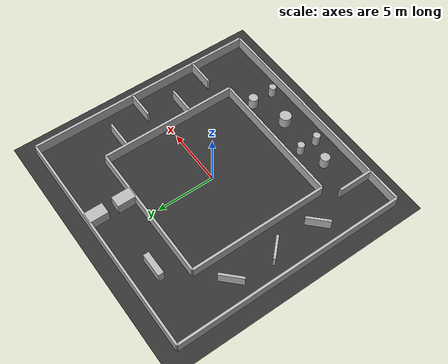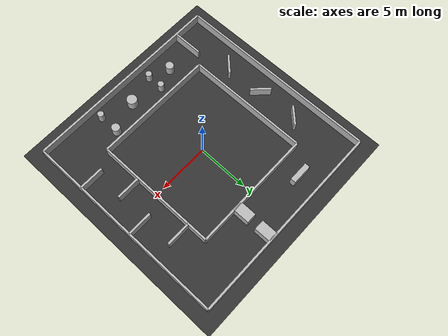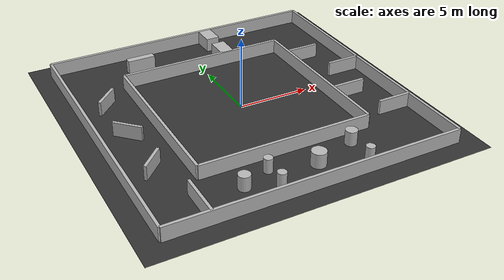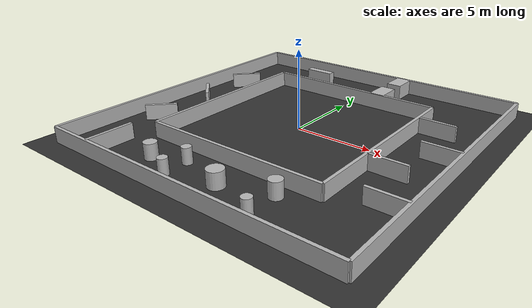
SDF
<sdf version="1.9">
  <world name="ftg_extreme_gauntlet">

    <physics name="1ms" type="ignored">
      <max_step_size>0.001</max_step_size>
      <real_time_factor>1.0</real_time_factor>
    </physics>

    <plugin filename="gz-sim-physics-system" name="gz::sim::systems::Physics"/>
    <plugin filename="gz-sim-sensors-system" name="gz::sim::systems::Sensors">
      <render_engine>ogre2</render_engine>
    </plugin>
    <plugin filename="gz-sim-scene-broadcaster-system" name="gz::sim::systems::SceneBroadcaster"/>
    <plugin filename="gz-sim-user-commands-system" name="gz::sim::systems::UserCommands"/>

    <light type="directional" name="sun">
      <cast_shadows>true</cast_shadows>
      <pose>0 0 10 0 0 0</pose>
      <diffuse>0.8 0.8 0.8 1</diffuse>
      <specular>0.2 0.2 0.2 1</specular>
      <direction>-0.5 0.1 -0.9</direction>
    </light>

    <model name="ground_plane">
      <static>true</static>
      <link name="link">
        <collision name="collision">
          <geometry><plane><normal>0 0 1</normal><size>100 100</size></plane></geometry>
        </collision>
        <visual name="visual">
          <geometry><plane><normal>0 0 1</normal><size>100 100</size></plane></geometry>
          <material><ambient>0.2 0.2 0.2 1</ambient><diffuse>0.2 0.2 0.2 1</diffuse></material>
        </visual>
      </link>
    </model>

    <!-- OUTER PERIMETER (20x20m bounding box)      -->
    <model name="outer_north"><pose>0 10 0.5 0 0 0</pose><static>true</static><link name="link"><collision name="collision"><geometry><box><size>20 0.2 1</size></box></geometry></collision><visual name="visual"><geometry><box><size>20 0.2 1</size></box></geometry></visual></link></model>
    <model name="outer_south"><pose>0 -10 0.5 0 0 0</pose><static>true</static><link name="link"><collision name="collision"><geometry><box><size>20 0.2 1</size></box></geometry></collision><visual name="visual"><geometry><box><size>20 0.2 1</size></box></geometry></visual></link></model>
    <model name="outer_east"><pose>10 0 0.5 0 0 0</pose><static>true</static><link name="link"><collision name="collision"><geometry><box><size>0.2 20 1</size></box></geometry></collision><visual name="visual"><geometry><box><size>0.2 20 1</size></box></geometry></visual></link></model>
    <model name="outer_west"><pose>-10 0 0.5 0 0 0</pose><static>true</static><link name="link"><collision name="collision"><geometry><box><size>0.2 20 1</size></box></geometry></collision><visual name="visual"><geometry><box><size>0.2 20 1</size></box></geometry></visual></link></model>

    <!-- INNER CORE (12x12m) Forming a 4m track     -->
    <model name="inner_north"><pose>0 6 0.5 0 0 0</pose><static>true</static><link name="link"><collision name="collision"><geometry><box><size>12 0.2 1</size></box></geometry></collision><visual name="visual"><geometry><box><size>12 0.2 1</size></box></geometry></visual></link></model>
    <model name="inner_south"><pose>0 -6 0.5 0 0 0</pose><static>true</static><link name="link"><collision name="collision"><geometry><box><size>12 0.2 1</size></box></geometry></collision><visual name="visual"><geometry><box><size>12 0.2 1</size></box></geometry></visual></link></model>
    <model name="inner_east"><pose>6 0 0.5 0 0 0</pose><static>true</static><link name="link"><collision name="collision"><geometry><box><size>0.2 12 1</size></box></geometry></collision><visual name="visual"><geometry><box><size>0.2 12 1</size></box></geometry></visual></link></model>
    <model name="inner_west"><pose>-6 0 0.5 0 0 0</pose><static>true</static><link name="link"><collision name="collision"><geometry><box><size>0.2 12 1</size></box></geometry></collision><visual name="visual"><geometry><box><size>0.2 12 1</size></box></geometry></visual></link></model>

    <!-- STAGE 1: Angled Slalom (Going North)       -->
    <!-- 45-degree angled walls forcing diagonal scanning -->
    <model name="angled_1"><pose>-8 -4 0.5 0 0 0.785398</pose><static>true</static><link name="link"><collision name="collision"><geometry><box><size>2.0 0.2 1</size></box></geometry></collision><visual name="visual"><geometry><box><size>2.0 0.2 1</size></box></geometry></visual></link></model>
    <model name="angled_2"><pose>-8 0 0.5 0 0 -0.785398</pose><static>true</static><link name="link"><collision name="collision"><geometry><box><size>2.0 0.2 1</size></box></geometry></collision><visual name="visual"><geometry><box><size>2.0 0.2 1</size></box></geometry></visual></link></model>
    <model name="angled_3"><pose>-8 4 0.5 0 0 0.785398</pose><static>true</static><link name="link"><collision name="collision"><geometry><box><size>2.0 0.2 1</size></box></geometry></collision><visual name="visual"><geometry><box><size>2.0 0.2 1</size></box></geometry></visual></link></model>

    <!-- STAGE 2: Bifurcation & Bottleneck (East)   -->
    <!-- Splitter Island: Forces the robot to choose a lane -->
    <model name="split_island"><pose>-4 8 0.5 0 0 0</pose><static>true</static><link name="link"><collision name="collision"><geometry><box><size>2 0.5 1</size></box></geometry></collision><visual name="visual"><geometry><box><size>2 0.5 1</size></box></geometry></visual></link></model>

    <!-- Extreme Bottleneck: Narrows 4m track to a 0.8m gap -->
    <model name="bottle_top"><pose>2 9.2 0.5 0 0 0</pose><static>true</static><link name="link"><collision name="collision"><geometry><box><size>1.0 1.6 1</size></box></geometry></collision><visual name="visual"><geometry><box><size>1.0 1.6 1</size></box></geometry></visual></link></model>
    <model name="bottle_bot"><pose>2 6.8 0.5 0 0 0</pose><static>true</static><link name="link"><collision name="collision"><geometry><box><size>1.0 1.6 1</size></box></geometry></collision><visual name="visual"><geometry><box><size>1.0 1.6 1</size></box></geometry></visual></link></model>

    <!-- STAGE 3: Overlapping Hairpins (Going South)-->
    <!-- These walls extend past the center line, eliminating line-of-sight -->
    <model name="hairpin_1"><pose>7.2 4 0.5 0 0 0</pose><static>true</static><link name="link"><collision name="collision"><geometry><box><size>2.4 0.2 1</size></box></geometry></collision><visual name="visual"><geometry><box><size>2.4 0.2 1</size></box></geometry></visual></link></model>
    <model name="hairpin_2"><pose>8.8 1 0.5 0 0 0</pose><static>true</static><link name="link"><collision name="collision"><geometry><box><size>2.4 0.2 1</size></box></geometry></collision><visual name="visual"><geometry><box><size>2.4 0.2 1</size></box></geometry></visual></link></model>
    <model name="hairpin_3"><pose>7.2 -2 0.5 0 0 0</pose><static>true</static><link name="link"><collision name="collision"><geometry><box><size>2.4 0.2 1</size></box></geometry></collision><visual name="visual"><geometry><box><size>2.4 0.2 1</size></box></geometry></visual></link></model>
    <model name="hairpin_4"><pose>8.8 -5 0.5 0 0 0</pose><static>true</static><link name="link"><collision name="collision"><geometry><box><size>2.4 0.2 1</size></box></geometry></collision><visual name="visual"><geometry><box><size>2.4 0.2 1</size></box></geometry></visual></link></model>

    <!-- STAGE 4: Chaos Field & The Trap (Going West)-->
    <!-- Clustered debris with irregular sizing -->
    <model name="chaos_1"><pose>4 -7 0.5 0 0 0</pose><static>true</static><link name="link"><collision name="collision"><geometry><cylinder><radius>0.4</radius><length>1</length></cylinder></geometry></collision><visual name="visual"><geometry><cylinder><radius>0.4</radius><length>1</length></cylinder></geometry></visual></link></model>
    <model name="chaos_2"><pose>4 -9 0.5 0 0 0</pose><static>true</static><link name="link"><collision name="collision"><geometry><cylinder><radius>0.3</radius><length>1</length></cylinder></geometry></collision><visual name="visual"><geometry><cylinder><radius>0.3</radius><length>1</length></cylinder></geometry></visual></link></model>
    <model name="chaos_3"><pose>1 -8 0.5 0 0 0</pose><static>true</static><link name="link"><collision name="collision"><geometry><cylinder><radius>0.5</radius><length>1</length></cylinder></geometry></collision><visual name="visual"><geometry><cylinder><radius>0.5</radius><length>1</length></cylinder></geometry></visual></link></model>
    <model name="chaos_4"><pose>-2 -7.2 0.5 0 0 0</pose><static>true</static><link name="link"><collision name="collision"><geometry><cylinder><radius>0.3</radius><length>1</length></cylinder></geometry></collision><visual name="visual"><geometry><cylinder><radius>0.3</radius><length>1</length></cylinder></geometry></visual></link></model>
    <model name="chaos_5"><pose>-2 -8.8 0.5 0 0 0</pose><static>true</static><link name="link"><collision name="collision"><geometry><cylinder><radius>0.3</radius><length>1</length></cylinder></geometry></collision><visual name="visual"><geometry><cylinder><radius>0.3</radius><length>1</length></cylinder></geometry></visual></link></model>
    <model name="chaos_6"><pose>-4 -8 0.5 0 0 0</pose><static>true</static><link name="link"><collision name="collision"><geometry><cylinder><radius>0.4</radius><length>1</length></cylinder></geometry></collision><visual name="visual"><geometry><cylinder><radius>0.4</radius><length>1</length></cylinder></geometry></visual></link></model>

    <!-- The Trap: Blocks 75% of the corridor, leaving a 1m gap along the inner wall -->
    <model name="the_trap"><pose>-7 -8.5 0.5 0 0 0</pose><static>true</static><link name="link"><collision name="collision"><geometry><box><size>0.2 3.0 1</size></box></geometry></collision><visual name="visual"><geometry><box><size>0.2 3.0 1</size></box></geometry></visual></link></model>

  </world>
</sdf>
